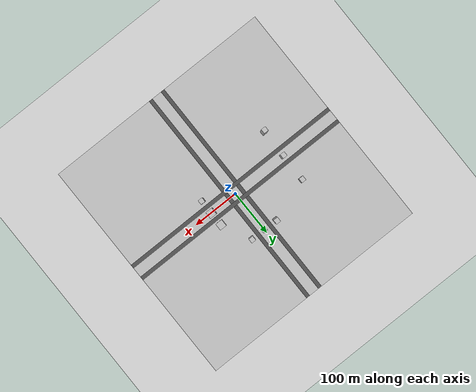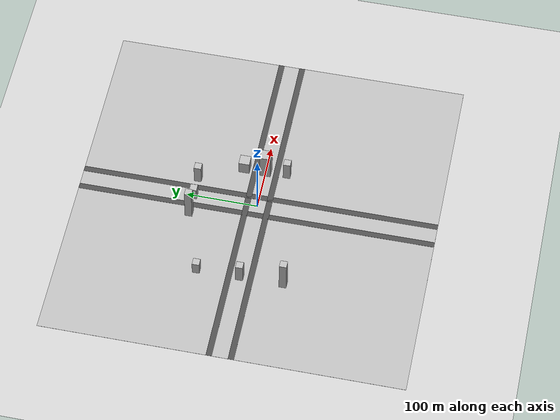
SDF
<?xml version="1.0" ?>
<sdf version="1.5">
  <world name="default">

    <scene>
      <ambient>0.4 0.4 0.4 1</ambient>
      <background>0.52 0.80 0.92 1</background>
      <shadows>false</shadows>
    </scene>
    <light type="directional" name="some_light">
      <diffuse>0.7 0.7 0.7 0</diffuse>
      <specular>1 1 1 0</specular>
      <direction>0 -1 -1</direction>
    </light>

    <model name='buildings'>

      <static>1</static>

        <link name="link1">
          <pose>60 -30 15 0 0 0</pose>

          <visual name="visual">
            <geometry>
              <box>
                <size>10 10 30</size>
              </box>
            </geometry>

            <material>
              <script>
                <uri>model://building_texture/materials/scripts</uri>
                <uri>model://building_texture/materials/textures</uri>
                <name>building3</name>
              </script>
            </material>

          </visual>
        </link>

        <link name="link2">
          <pose>60 0 20 0 0 0</pose>

          <visual name="visual">
            <geometry>
              <box>
                <size>15 15 40</size>
              </box>
            </geometry>

            <material>
              <script>
                <uri>model://building_texture/materials/scripts</uri>
                <uri>model://building_texture/materials/textures</uri>
                <name>building6</name>
              </script>
            </material>

          </visual>
        </link>

        <link name="link3">
          <pose>60 30 10 0 0 0</pose>

          <visual name="visual">
            <geometry>
              <box>
                <size>15 15 20</size>
              </box>
            </geometry>

            <material>
              <script>
                <uri>model://building_texture/materials/scripts</uri>
                <uri>model://building_texture/materials/textures</uri>
                <name>building8</name>
              </script>
            </material>

          </visual>
        </link>

        <link name="link4">
          <pose>30 90 15 0 0 0</pose>

          <visual name="visual">
            <geometry>
              <box>
                <size>10 10 30</size>
              </box>
            </geometry>

            <material>
              <script>
                <uri>model://building_texture/materials/scripts</uri>
                <uri>model://building_texture/materials/textures</uri>
                <name>building4</name>
              </script>
            </material>

          </visual>
        </link>

        <link name="link5">
          <pose>0 90 10 0 0 0</pose>

          <visual name="visual">
            <geometry>
              <box>
                <size>10 10 20</size>
              </box>
            </geometry>

            <material>
              <script>
                <uri>model://building_texture/materials/scripts</uri>
                <uri>model://building_texture/materials/textures</uri>
                <name>building5</name>
              </script>
            </material>

          </visual>
        </link>

        <link name="link6">
          <pose>-30 90 25 0 0 0</pose>

          <visual name="visual">
            <geometry>
              <box>
                <size>10 10 50</size>
              </box>
            </geometry>

            <material>
              <script>
                <uri>model://building_texture/materials/scripts</uri>
                <uri>model://building_texture/materials/textures</uri>
                <name>building9</name>
              </script>
            </material>

          </visual>
        </link>

        <link name="link7">
          <pose>-120 60 10 0 0 0</pose>

          <visual name="visual">
            <geometry>
              <box>
                <size>10 10 20</size>
              </box>
            </geometry>

            <material>
              <script>
                <uri>model://building_texture/materials/scripts</uri>
                <uri>model://building_texture/materials/textures</uri>
                <name>building7</name>
              </script>
            </material>

          </visual>
        </link>

        <link name="link8">
          <pose>-120 0 15 0 0 0</pose>

          <visual name="visual">
            <geometry>
              <box>
                <size>10 10 30</size>
              </box>
            </geometry>

            <material>
              <script>
                <uri>model://building_texture/materials/scripts</uri>
                <uri>model://building_texture/materials/textures</uri>
                <name>building1</name>
              </script>
            </material>

          </visual>
        </link>

        <link name="link9">
          <pose>-120 -60 25 0 0 0</pose>

          <visual name="visual">
            <geometry>
              <box>
                <size>10 10 50</size>
              </box>
            </geometry>

            <material>
              <script>
                <uri>model://building_texture/materials/scripts</uri>
                <uri>model://building_texture/materials/textures</uri>
                <name>building2</name>
              </script>
            </material>

          </visual>
        </link>

      </model>

    <!-- A global light source -->
    <include>
      <uri>model://sun</uri>
    </include>
    <!-- A ground plane -->
    <include>
      <uri>model://ground_plane</uri>
    </include>
    <include>
      <uri>model://ground_plane1</uri>
    </include>
    <include>
      <uri>model://road</uri>
      <name>road1</name>
      <pose>0 15 0.1 0 0 0</pose>
    </include>
    <include>
      <uri>model://road</uri>
      <name>road2</name>
      <pose>0 -15 0.1 0 0 0</pose>
    </include>
    <include>
      <uri>model://road</uri>
      <name>road3</name>
      <pose>15 0 0.1 0 0 1.57</pose>
    </include>
    <include>
      <uri>model://road</uri>
      <name>road4</name>
      <pose>-15 0 0.1 0 0 1.57</pose>
    </include>
    <physics name='default_physics' default='0' type='ode'>
      <gravity>0 0 -9.8066</gravity>
      <ode>
        <solver>
          <type>quick</type>
          <iters>10</iters>
          <sor>1.3</sor>
          <use_dynamic_moi_rescaling>0</use_dynamic_moi_rescaling>
        </solver>
        <constraints>
          <cfm>0</cfm>
          <erp>0.2</erp>
          <contact_max_correcting_vel>100</contact_max_correcting_vel>
          <contact_surface_layer>0.001</contact_surface_layer>
        </constraints>
      </ode>
      <max_step_size>0.004</max_step_size>
      <real_time_factor>1</real_time_factor>
      <real_time_update_rate>250</real_time_update_rate>
      <magnetic_field>6.0e-6 2.3e-5 -4.2e-5</magnetic_field>
    </physics>
  </world>
</sdf>

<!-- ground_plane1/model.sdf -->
<sdf version="1.5">
  <model name="ground_plane1">
    <static>true</static>
    <link name="link">
      <collision name="collision">
        <geometry>
          <box>
            <size>200 200 .1</size>
          </box>
        </geometry>
      </collision>
      <visual name="visual">
        <cast_shadows>false</cast_shadows>
        <geometry>
          <box>
            <size>500 500 .1</size>
          </box>
        </geometry>
        <material>
          <script>
            <uri>model://ground_plane1/materials/scripts</uri>
            <uri>model://ground_plane1/materials/textures</uri>
            <name>ground</name>
          </script>
        </material>
      </visual>
    </link>
  </model>
</sdf>

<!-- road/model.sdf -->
<sdf version="1.5">
  <model name="road">
    <static>true</static>
    <link name="link">
      <visual name="visual">
        <cast_shadows>false</cast_shadows>
        <geometry>
          <box>
            <size>500 8 .1</size>
          </box>
        </geometry>
        <material>
          <script>
            <uri>model://road/materials/scripts</uri>
            <uri>model://road/materials/textures</uri>
            <name>road</name>
          </script>
        </material>
      </visual>
    </link>
  </model>
</sdf>
